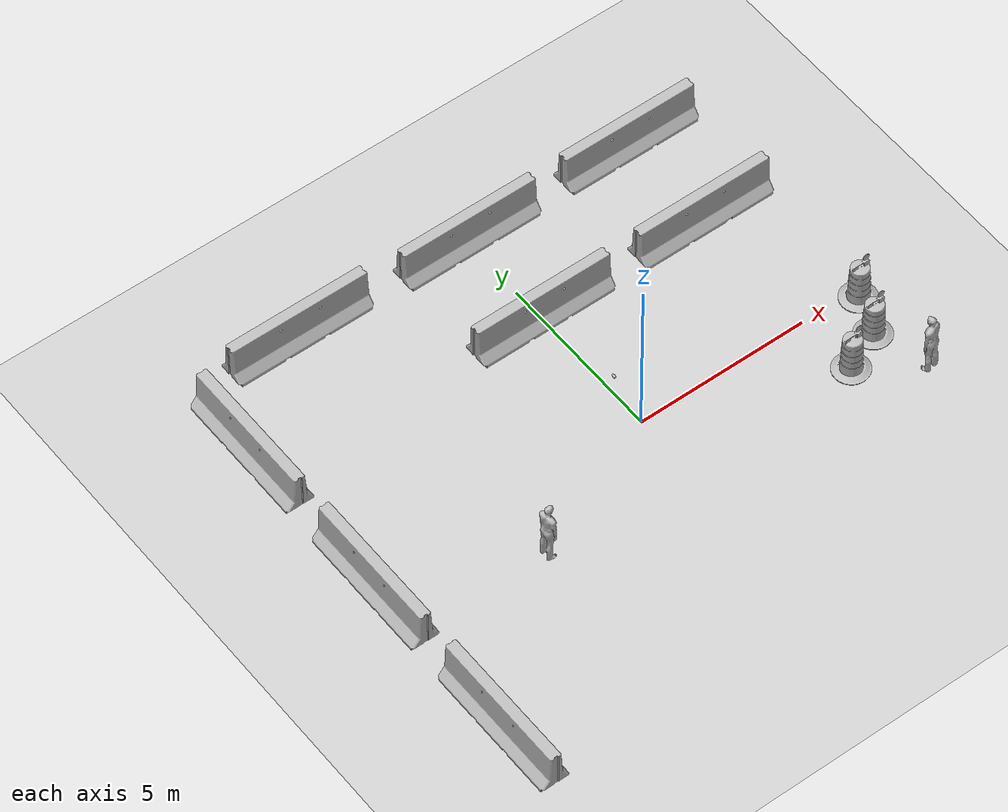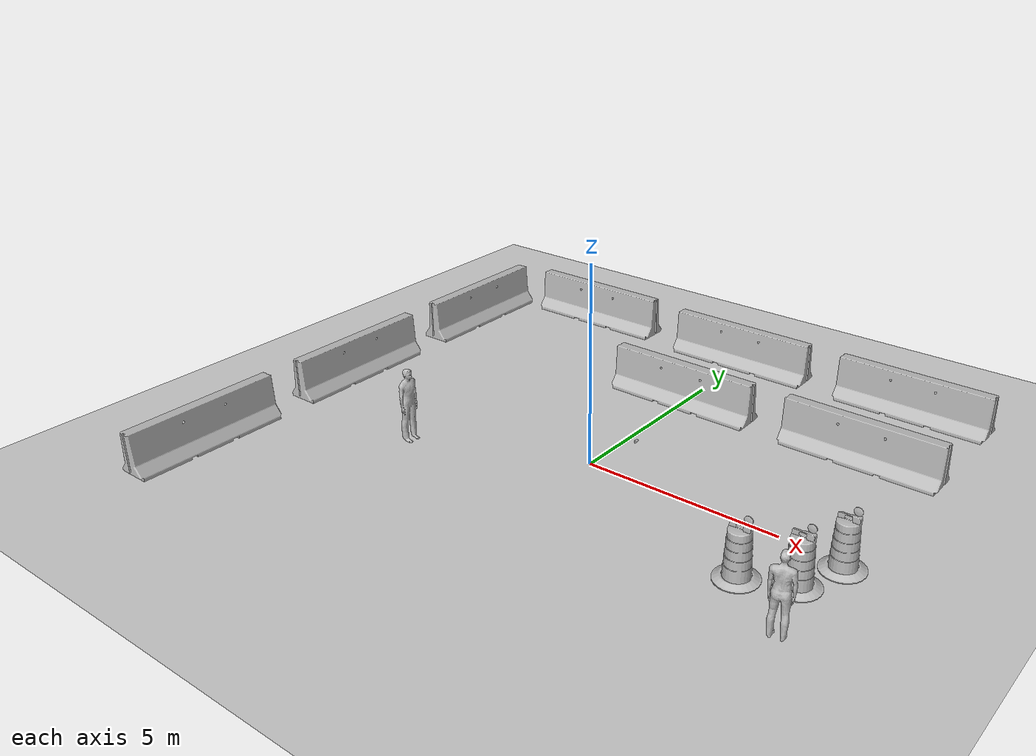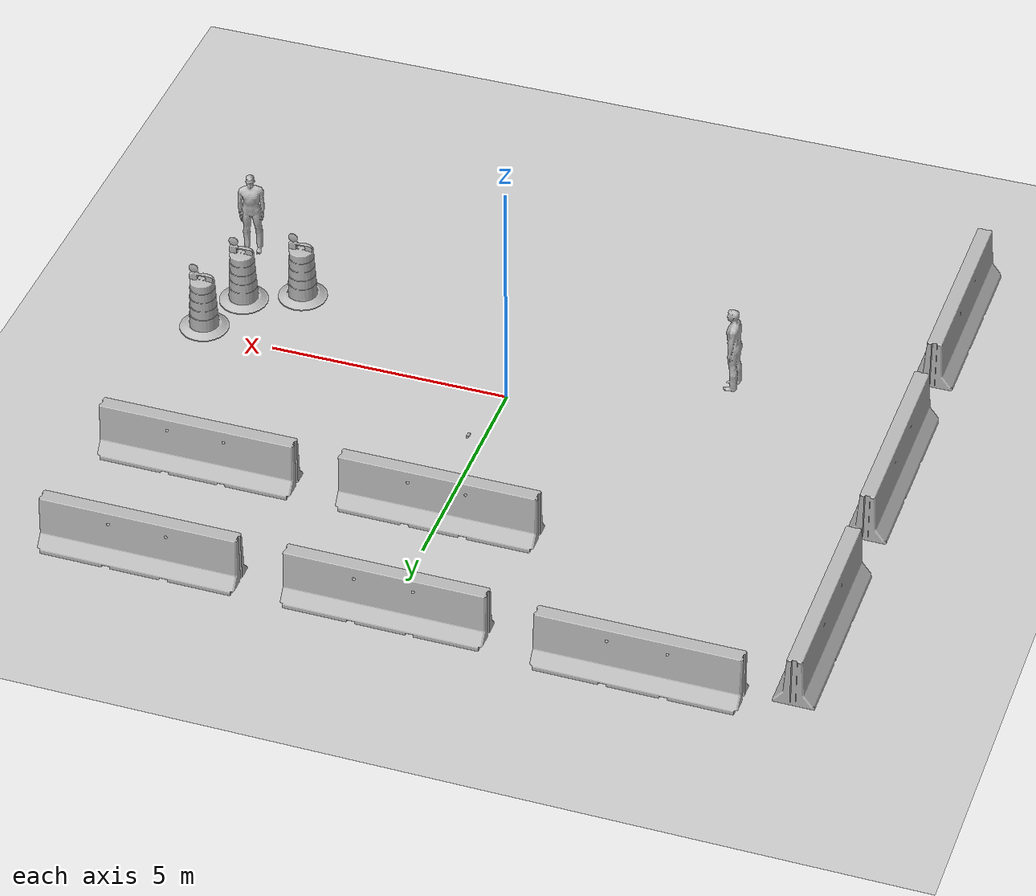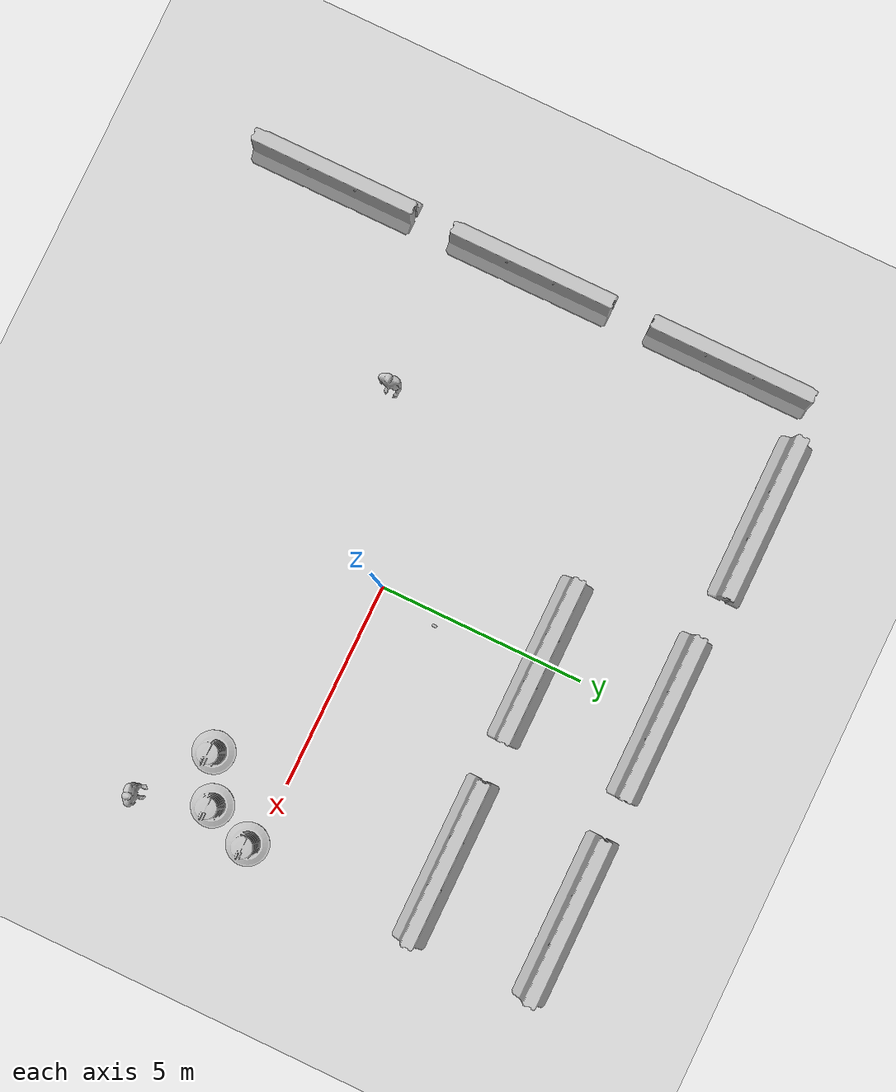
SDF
<sdf version="1.6">
 <world name="default">
  <light name="sun" type="directional">
   <pose>0 0 10 0 -0 0</pose>
   <diffuse>0.8 0.8 0.8 1</diffuse>
   <specular>0.2 0.2 0.2 1</specular>
   <attenuation>
    <range>1000</range>
    <constant>0.9</constant>
    <linear>0.01</linear>
    <quadratic>0.001</quadratic>
   </attenuation>
   <direction>-0.5 0.1 -0.9</direction>
  </light>
  <model name="ground_plane">
   <static>1</static>
   <link name="link">
    <collision name="collision">
     <geometry><plane><normal>0 0 1</normal><size>100 100</size></plane></geometry>
     <surface><friction><ode><mu>100</mu><mu2>50</mu2></ode></friction></surface>
    </collision>
    <visual name="visual">
     <cast_shadows>0</cast_shadows>
     <geometry><plane><normal>0 0 1</normal><size>100 100</size></plane></geometry>
     <material>
      <script><uri>file://media/materials/scripts/gazebo.material</uri><name>Gazebo/Grey</name></script>
     </material>
    </visual>
   </link>
  </model>
  <gravity>0 0 -9.8</gravity>
  <magnetic_field>6e-06 2.3e-05 -4.2e-05</magnetic_field>
  <atmosphere type="adiabatic"/>
  <physics name="default_physics" default="0" type="ode">
   <max_step_size>0.001</max_step_size>
   <real_time_factor>1</real_time_factor>
   <real_time_update_rate>1000</real_time_update_rate>
  </physics>
  <scene><ambient>0.4 0.4 0.4 1</ambient><background>0.7 0.7 0.7 1</background><shadows>1</shadows></scene>
  <spherical_coordinates>
   <surface_model>EARTH_WGS84</surface_model>
   <latitude_deg>0</latitude_deg>
   <longitude_deg>0</longitude_deg>
   <elevation>0</elevation>
   <heading_deg>0</heading_deg>
  </spherical_coordinates>
  <model name="coke_can">
   <link name="link">
    <inertial>
     <pose>-0.01 -0.012 0.15 0 -0 0</pose>
     <mass>0.39</mass>
     <inertia><ixx>0.00058</ixx><ixy>0</ixy><ixz>0</ixz><iyy>0.00058</iyy><iyz>0</iyz><izz>0.00019</izz></inertia>
    </inertial>
    <collision name="collision">
     <pose>0 0 -0.46 0 -0 0</pose>
     <geometry><mesh><uri>model://coke_can/meshes/coke_can.dae</uri></mesh></geometry>
     <surface>
      <friction><ode><mu>1</mu><mu2>1</mu2></ode></friction>
      <contact><ode><kp>1e+07</kp><kd>1</kd><min_depth>0.001</min_depth><max_vel>0.1</max_vel></ode></contact>
     </surface>
    </collision>
    <visual name="visual">
     <pose>0 0 -0.46 0 -0 0</pose>
     <geometry><mesh><uri>model://coke_can/meshes/coke_can.dae</uri></mesh></geometry>
    </visual>
   </link>
   <pose>0.307033 1.68265 0.066423 -1.57511 0.79082 -0.046848</pose>
  </model>
  <model name="coke_can_clone">
   <link name="link">
    <inertial>
     <pose>-0.01 -0.012 0.15 0 -0 0</pose>
     <mass>0.39</mass>
     <inertia><ixx>0.00058</ixx><ixy>0</ixy><ixz>0</ixz><iyy>0.00058</iyy><iyz>0</iyz><izz>0.00019</izz></inertia>
    </inertial>
    <collision name="collision">
     <pose>0 0 -0.46 0 -0 0</pose>
     <geometry><mesh><uri>model://coke_can/meshes/coke_can.dae</uri></mesh></geometry>
     <surface>
      <friction><ode><mu>1</mu><mu2>1</mu2></ode></friction>
      <contact><ode><kp>1e+07</kp><kd>1</kd><min_depth>0.001</min_depth><max_vel>0.1</max_vel></ode></contact>
     </surface>
    </collision>
    <visual name="visual">
     <pose>0 0 -0.46 0 -0 0</pose>
     <geometry><mesh><uri>model://coke_can/meshes/coke_can.dae</uri></mesh></geometry>
    </visual>
   </link>
   <pose>1.0067 1.64892 -0.004906 -0.064172 0.001466 -0.000136</pose>
  </model>
  <model name="Construction Barrel">
   <link name="link">
    <inertial>
     <pose>0 0 0.4 0 -0 0</pose>
     <mass>500</mass>
     <inertia><ixx>51.2096</ixx><iyy>51.2096</iyy><izz>25</izz><ixy>0</ixy><ixz>0</ixz><iyz>0</iyz></inertia>
    </inertial>
    <collision name="collision">
     <geometry><mesh><uri>model://construction_barrel/meshes/construction_barrel.dae</uri></mesh></geometry>
    </collision>
    <visual name="visual">
     <geometry><mesh><uri>model://construction_barrel/meshes/construction_barrel.dae</uri></mesh></geometry>
    </visual>
   </link>
   <pose>6.59117 -0.229072 -1e-06 4e-06 -2e-06 -3.7e-05</pose>
  </model>
  <model name="Construction Barrel_clone">
   <link name="link">
    <inertial>
     <pose>0 0 0.4 0 -0 0</pose>
     <mass>500</mass>
     <inertia><ixx>51.2096</ixx><iyy>51.2096</iyy><izz>25</izz><ixy>0</ixy><ixz>0</ixz><iyz>0</iyz></inertia>
    </inertial>
    <collision name="collision">
     <geometry><mesh><uri>model://construction_barrel/meshes/construction_barrel.dae</uri></mesh></geometry>
    </collision>
    <visual name="visual">
     <geometry><mesh><uri>model://construction_barrel/meshes/construction_barrel.dae</uri></mesh></geometry>
    </visual>
   </link>
   <pose>6.15493 -1.32723 -2e-06 1e-06 8e-06 -2.6e-05</pose>
  </model>
  <model name="Construction Barrel_clone_clone">
   <link name="link">
    <inertial>
     <pose>0 0 0.4 0 -0 0</pose>
     <mass>500</mass>
     <inertia><ixx>51.2096</ixx><iyy>51.2096</iyy><izz>25</izz><ixy>0</ixy><ixz>0</ixz><iyz>0</iyz></inertia>
    </inertial>
    <collision name="collision">
     <geometry><mesh><uri>model://construction_barrel/meshes/construction_barrel.dae</uri></mesh></geometry>
    </collision>
    <visual name="visual">
     <geometry><mesh><uri>model://construction_barrel/meshes/construction_barrel.dae</uri></mesh></geometry>
    </visual>
   </link>
   <pose>5.04937 -1.83027 -1e-06 2e-06 -1e-06 -4.4e-05</pose>
  </model>
  <model name="jersey_barrier">
   <static>1</static>
   <link name="link">
    <visual name="visual">
     <geometry><mesh><uri>model://jersey_barrier/meshes/jersey_barrier.dae</uri></mesh></geometry>
    </visual>
    <collision name="upright">
     <pose>0 0 0.5715 0 -0 0</pose>
     <geometry><box><size>4.06542 0.3063 1.143</size></box></geometry>
    </collision>
    <collision name="base">
     <pose>0 0 0.032258 0 -0 0</pose>
     <geometry><box><size>4.06542 0.8107 0.064516</size></box></geometry>
    </collision>
    <collision name="base2">
     <pose>0 0 0.1 0 -0 0</pose>
     <geometry><box><size>4.06542 0.65 0.1</size></box></geometry>
    </collision>
    <collision name="base3">
     <pose>0 0 0.2 0 -0 0</pose>
     <geometry><box><size>4.06542 0.5 0.1</size></box></geometry>
    </collision>
    <collision name="left-angle">
     <pose>0 -0.224 0.2401 0.9 -0 0</pose>
     <geometry><box><size>4.06542 0.5 0.064516</size></box></geometry>
    </collision>
    <collision name="right-angle">
     <pose>0 0.224 0.2401 -0.9 0 0</pose>
     <geometry><box><size>4.06542 0.5 0.064516</size></box></geometry>
    </collision>
   </link>
   <pose>-5.0568 7.16448 0 0 -0 0</pose>
  </model>
  <model name="jersey_barrier_clone">
   <static>1</static>
   <link name="link">
    <visual name="visual">
     <geometry><mesh><uri>model://jersey_barrier/meshes/jersey_barrier.dae</uri></mesh></geometry>
    </visual>
    <collision name="upright">
     <pose>0 0 0.5715 0 -0 0</pose>
     <geometry><box><size>4.06542 0.3063 1.143</size></box></geometry>
    </collision>
    <collision name="base">
     <pose>0 0 0.032258 0 -0 0</pose>
     <geometry><box><size>4.06542 0.8107 0.064516</size></box></geometry>
    </collision>
    <collision name="base2">
     <pose>0 0 0.1 0 -0 0</pose>
     <geometry><box><size>4.06542 0.65 0.1</size></box></geometry>
    </collision>
    <collision name="base3">
     <pose>0 0 0.2 0 -0 0</pose>
     <geometry><box><size>4.06542 0.5 0.1</size></box></geometry>
    </collision>
    <collision name="left-angle">
     <pose>0 -0.224 0.2401 0.9 -0 0</pose>
     <geometry><box><size>4.06542 0.5 0.064516</size></box></geometry>
    </collision>
    <collision name="right-angle">
     <pose>0 0.224 0.2401 -0.9 0 0</pose>
     <geometry><box><size>4.06542 0.5 0.064516</size></box></geometry>
    </collision>
   </link>
   <pose>0 7 0 0 -0 0</pose>
  </model>
  <model name="jersey_barrier_clone_clone">
   <static>1</static>
   <link name="link">
    <visual name="visual">
     <geometry><mesh><uri>model://jersey_barrier/meshes/jersey_barrier.dae</uri></mesh></geometry>
    </visual>
    <collision name="upright">
     <pose>0 0 0.5715 0 -0 0</pose>
     <geometry><box><size>4.06542 0.3063 1.143</size></box></geometry>
    </collision>
    <collision name="base">
     <pose>0 0 0.032258 0 -0 0</pose>
     <geometry><box><size>4.06542 0.8107 0.064516</size></box></geometry>
    </collision>
    <collision name="base2">
     <pose>0 0 0.1 0 -0 0</pose>
     <geometry><box><size>4.06542 0.65 0.1</size></box></geometry>
    </collision>
    <collision name="base3">
     <pose>0 0 0.2 0 -0 0</pose>
     <geometry><box><size>4.06542 0.5 0.1</size></box></geometry>
    </collision>
    <collision name="left-angle">
     <pose>0 -0.224 0.2401 0.9 -0 0</pose>
     <geometry><box><size>4.06542 0.5 0.064516</size></box></geometry>
    </collision>
    <collision name="right-angle">
     <pose>0 0.224 0.2401 -0.9 0 0</pose>
     <geometry><box><size>4.06542 0.5 0.064516</size></box></geometry>
    </collision>
   </link>
   <pose>5 7 0 0 -0 0</pose>
  </model>
  <model name="jersey_barrier_clone_0_clone">
   <static>1</static>
   <link name="link">
    <visual name="visual">
     <geometry><mesh><uri>model://jersey_barrier/meshes/jersey_barrier.dae</uri></mesh></geometry>
    </visual>
    <collision name="upright">
     <pose>0 0 0.5715 0 -0 0</pose>
     <geometry><box><size>4.06542 0.3063 1.143</size></box></geometry>
    </collision>
    <collision name="base">
     <pose>0 0 0.032258 0 -0 0</pose>
     <geometry><box><size>4.06542 0.8107 0.064516</size></box></geometry>
    </collision>
    <collision name="base2">
     <pose>0 0 0.1 0 -0 0</pose>
     <geometry><box><size>4.06542 0.65 0.1</size></box></geometry>
    </collision>
    <collision name="base3">
     <pose>0 0 0.2 0 -0 0</pose>
     <geometry><box><size>4.06542 0.5 0.1</size></box></geometry>
    </collision>
    <collision name="left-angle">
     <pose>0 -0.224 0.2401 0.9 -0 0</pose>
     <geometry><box><size>4.06542 0.5 0.064516</size></box></geometry>
    </collision>
    <collision name="right-angle">
     <pose>0 0.224 0.2401 -0.9 0 0</pose>
     <geometry><box><size>4.06542 0.5 0.064516</size></box></geometry>
    </collision>
   </link>
   <pose>0 4 0 0 -0 0</pose>
  </model>
  <model name="jersey_barrier_clone_0_clone_clone">
   <static>1</static>
   <link name="link">
    <visual name="visual">
     <geometry><mesh><uri>model://jersey_barrier/meshes/jersey_barrier.dae</uri></mesh></geometry>
    </visual>
    <collision name="upright">
     <pose>0 0 0.5715 0 -0 0</pose>
     <geometry><box><size>4.06542 0.3063 1.143</size></box></geometry>
    </collision>
    <collision name="base">
     <pose>0 0 0.032258 0 -0 0</pose>
     <geometry><box><size>4.06542 0.8107 0.064516</size></box></geometry>
    </collision>
    <collision name="base2">
     <pose>0 0 0.1 0 -0 0</pose>
     <geometry><box><size>4.06542 0.65 0.1</size></box></geometry>
    </collision>
    <collision name="base3">
     <pose>0 0 0.2 0 -0 0</pose>
     <geometry><box><size>4.06542 0.5 0.1</size></box></geometry>
    </collision>
    <collision name="left-angle">
     <pose>0 -0.224 0.2401 0.9 -0 0</pose>
     <geometry><box><size>4.06542 0.5 0.064516</size></box></geometry>
    </collision>
    <collision name="right-angle">
     <pose>0 0.224 0.2401 -0.9 0 0</pose>
     <geometry><box><size>4.06542 0.5 0.064516</size></box></geometry>
    </collision>
   </link>
   <pose>5 4 0 0 -0 0</pose>
  </model>
  <model name="jersey_barrier_clone_0">
   <static>1</static>
   <link name="link">
    <visual name="visual">
     <geometry><mesh><uri>model://jersey_barrier/meshes/jersey_barrier.dae</uri></mesh></geometry>
    </visual>
    <collision name="upright">
     <pose>0 0 0.5715 0 -0 0</pose>
     <geometry><box><size>4.06542 0.3063 1.143</size></box></geometry>
    </collision>
    <collision name="base">
     <pose>0 0 0.032258 0 -0 0</pose>
     <geometry><box><size>4.06542 0.8107 0.064516</size></box></geometry>
    </collision>
    <collision name="base2">
     <pose>0 0 0.1 0 -0 0</pose>
     <geometry><box><size>4.06542 0.65 0.1</size></box></geometry>
    </collision>
    <collision name="base3">
     <pose>0 0 0.2 0 -0 0</pose>
     <geometry><box><size>4.06542 0.5 0.1</size></box></geometry>
    </collision>
    <collision name="left-angle">
     <pose>0 -0.224 0.2401 0.9 -0 0</pose>
     <geometry><box><size>4.06542 0.5 0.064516</size></box></geometry>
    </collision>
    <collision name="right-angle">
     <pose>0 0.224 0.2401 -0.9 0 0</pose>
     <geometry><box><size>4.06542 0.5 0.064516</size></box></geometry>
    </collision>
   </link>
   <pose>-8 5 0 0 -0 1.57</pose>
  </model>
  <model name="jersey_barrier_clone_1">
   <static>1</static>
   <link name="link">
    <visual name="visual">
     <geometry><mesh><uri>model://jersey_barrier/meshes/jersey_barrier.dae</uri></mesh></geometry>
    </visual>
    <collision name="upright">
     <pose>0 0 0.5715 0 -0 0</pose>
     <geometry><box><size>4.06542 0.3063 1.143</size></box></geometry>
    </collision>
    <collision name="base">
     <pose>0 0 0.032258 0 -0 0</pose>
     <geometry><box><size>4.06542 0.8107 0.064516</size></box></geometry>
    </collision>
    <collision name="base2">
     <pose>0 0 0.1 0 -0 0</pose>
     <geometry><box><size>4.06542 0.65 0.1</size></box></geometry>
    </collision>
    <collision name="base3">
     <pose>0 0 0.2 0 -0 0</pose>
     <geometry><box><size>4.06542 0.5 0.1</size></box></geometry>
    </collision>
    <collision name="left-angle">
     <pose>0 -0.224 0.2401 0.9 -0 0</pose>
     <geometry><box><size>4.06542 0.5 0.064516</size></box></geometry>
    </collision>
    <collision name="right-angle">
     <pose>0 0.224 0.2401 -0.9 0 0</pose>
     <geometry><box><size>4.06542 0.5 0.064516</size></box></geometry>
    </collision>
   </link>
   <pose>-8 0 0 0 -0 1.57</pose>
  </model>
  <model name="jersey_barrier_clone_1_clone">
   <static>1</static>
   <link name="link">
    <visual name="visual">
     <geometry><mesh><uri>model://jersey_barrier/meshes/jersey_barrier.dae</uri></mesh></geometry>
    </visual>
    <collision name="upright">
     <pose>0 0 0.5715 0 -0 0</pose>
     <geometry><box><size>4.06542 0.3063 1.143</size></box></geometry>
    </collision>
    <collision name="base">
     <pose>0 0 0.032258 0 -0 0</pose>
     <geometry><box><size>4.06542 0.8107 0.064516</size></box></geometry>
    </collision>
    <collision name="base2">
     <pose>0 0 0.1 0 -0 0</pose>
     <geometry><box><size>4.06542 0.65 0.1</size></box></geometry>
    </collision>
    <collision name="base3">
     <pose>0 0 0.2 0 -0 0</pose>
     <geometry><box><size>4.06542 0.5 0.1</size></box></geometry>
    </collision>
    <collision name="left-angle">
     <pose>0 -0.224 0.2401 0.9 -0 0</pose>
     <geometry><box><size>4.06542 0.5 0.064516</size></box></geometry>
    </collision>
    <collision name="right-angle">
     <pose>0 0.224 0.2401 -0.9 0 0</pose>
     <geometry><box><size>4.06542 0.5 0.064516</size></box></geometry>
    </collision>
   </link>
   <pose>-8 -5 0 0 -0 1.57</pose>
  </model>
  <model name="person_standing">
   <link name="link">
    <inertial>
     <pose>0 -0.1 0.95 0 -0 0</pose>
     <mass>80</mass>
     <inertia><ixx>24.88</ixx><ixy>0</ixy><ixz>0</ixz><iyy>25.73</iyy><iyz>0</iyz><izz>2.48</izz></inertia>
    </inertial>
    <collision name="bottom">
     <pose>0 -0.1 0.01 0 -0 0</pose>
     <geometry><box><size>0.5 0.35 0.02</size></box></geometry>
    </collision>
    <collision name="person">
     <pose>0 0 0.02 0.04 -0 0</pose>
     <geometry><mesh><uri>model://person_standing/meshes/standing.dae</uri></mesh></geometry>
    </collision>
    <visual name="visual">
     <pose>0 0 0.02 0.04 -0 0</pose>
     <geometry><mesh><uri>model://person_standing/meshes/standing.dae</uri></mesh></geometry>
    </visual>
   </link>
   <pose>-4.27984 -1.75855 0 0 -0 1.57</pose>
  </model>
  <model name="person_standing_clone">
   <link name="link">
    <inertial>
     <pose>0 -0.1 0.95 0 -0 0</pose>
     <mass>80</mass>
     <inertia><ixx>24.88</ixx><ixy>0</ixy><ixz>0</ixz><iyy>25.73</iyy><iyz>0</iyz><izz>2.48</izz></inertia>
    </inertial>
    <collision name="bottom">
     <pose>0 -0.1 0.01 0 -0 0</pose>
     <geometry><box><size>0.5 0.35 0.02</size></box></geometry>
    </collision>
    <collision name="person">
     <pose>0 0 0.02 0.04 -0 0</pose>
     <geometry><mesh><uri>model://person_standing/meshes/standing.dae</uri></mesh></geometry>
    </collision>
    <visual name="visual">
     <pose>0 0 0.02 0.04 -0 0</pose>
     <geometry><mesh><uri>model://person_standing/meshes/standing.dae</uri></mesh></geometry>
    </visual>
   </link>
   <pose>6.59995 -3.04346 0 0 0 -2.90614</pose>
  </model>
 </world>
</sdf>
